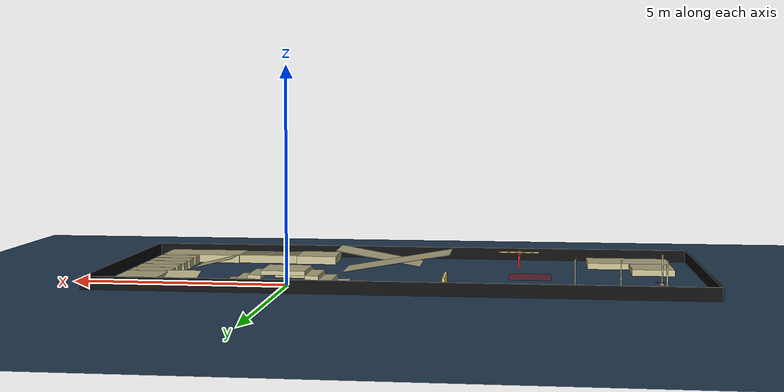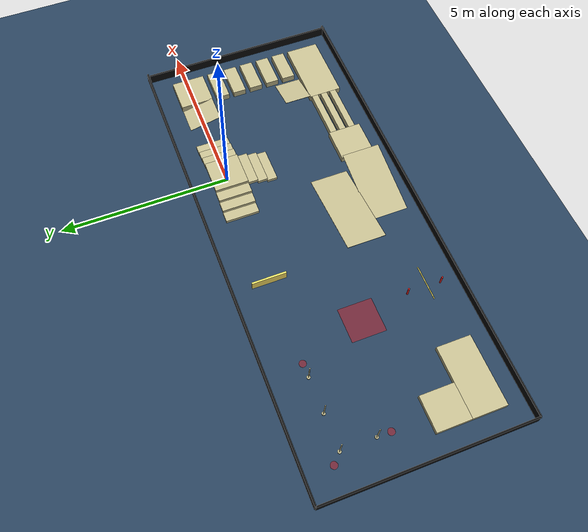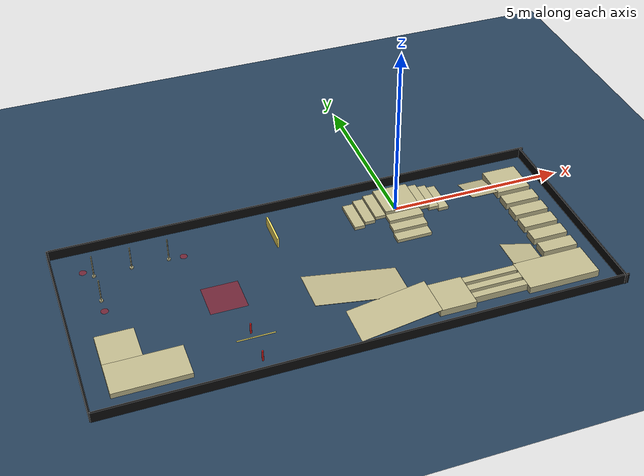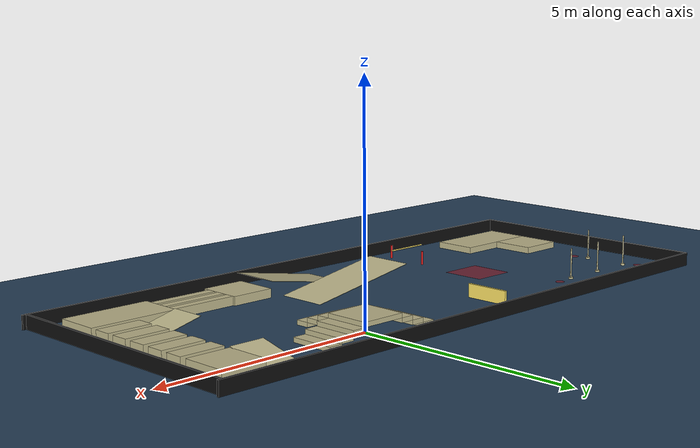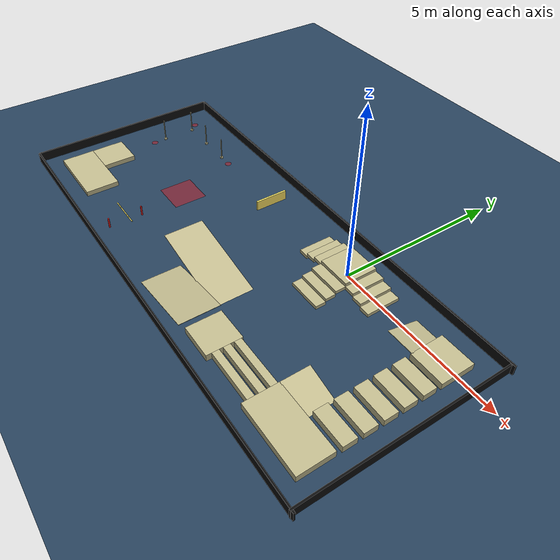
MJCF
<mujoco model="nav_tools terrain B_C">
  <statistic center="-5.5 -1.9 0.4" extent="5.0" />
  <visual>
    <headlight diffuse="0.6 0.6 0.6" ambient="0.3 0.3 0.3" specular="0 0 0" />
    <rgba haze="0.15 0.25 0.35 1" />
    <global azimuth="90" elevation="-20" />
  </visual>
  <asset>
    <texture type="skybox" builtin="gradient" rgb1="0.3 0.5 0.7" rgb2="0 0 0" width="512" height="3072" />
    <texture type="2d" name="groundplane" builtin="checker" mark="edge" rgb1="0.2 0.3 0.4" rgb2="0.1 0.2 0.3" markrgb="0.8 0.8 0.8" width="300" height="300" />
    <material name="groundplane" texture="groundplane" texuniform="true" texrepeat="5 5" reflectance="0.2" />
  </asset>
  <worldbody>
    <!-- 比赛地图基准地面。 -->
    <geom name="floor" size="0 0 0.05" type="plane" material="groundplane" />
    <!-- 14m x 6m outer boundary, mirrored from A_C across the x axis. -->
    <geom name="border_x_min" pos="-9.5 -1.9 0.15" type="box" size="0.025 3.0 0.15" rgba="0.05 0.05 0.05 1" />
    <geom name="border_x_max" pos="4.401477 -1.937395 0.15" type="box" size="0.025 3.0 0.15" rgba="0.05 0.05 0.05 1" />
    <geom name="border_y_min" pos="-2.5 -4.9 0.15" type="box" size="7.0 0.025 0.15" rgba="0.05 0.05 0.05 1" />
    <geom name="border_y_max" pos="-2.5 1.1 0.15" type="box" size="7.0 0.025 0.15" rgba="0.05 0.05 0.05 1" />
    <!-- 高墙：机器人需从上方跃过或攀爬通过，自动/遥控均可计分。 -->
    <geom pos="-3.589248 0.022509 0.15" type="box" size="0.025 0.5 0.15" quat="1 0 0 0" rgba="1.0 0.9 0.4 1.0" />
    <!-- 砂砾碎木坑：L 形障碍，需从 1m 短边进入或离开，完整通过才计分。 -->
    <geom pos="-8.430146 -2.855226 0.075" type="box" size="0.5 0.5 0.075" quat="0.707107 0 0 0.707107" rgba="0.75 0.72 0.55 1.0" />
    <geom pos="-7.930146 -3.855226 0.075" type="box" size="0.5 1.0 0.075" quat="0.707107 0 0 0.707107" rgba="0.75 0.72 0.55 1.0" />
    <!-- 限高杆：机器人需从横杆下方通过，碰落横杆则越障失败。 -->
    <geom pos="-5.231818 -4.372727 0.155" type="cylinder" size="0.025 0.155" quat="0.707107 0 0 -0.707107" rgba="0.8 0.1 0.1 1.0" />
    <geom pos="-5.231818 -3.372727 0.155" type="cylinder" size="0.025 0.155" quat="0.707107 0 0 -0.707107" rgba="0.8 0.1 0.1 1.0" />
    <geom pos="-5.231818 -3.872727 0.325" type="cylinder" size="0.015 0.5" quat="0.5 0.5 -0.5 -0.5" rgba="1.0 0.9 0.4 1.0" />
    <!-- 启动区：规则允许地面和 T 字形台阶上各一个启动区，机器人需完全纳入启动区后开始。 -->
    <geom pos="-5.5 -1.9 0" type="box" size="0.5 0.5 0.001" rgba="1.0 0.0 0.0 0.35" contype="0" conaffinity="0" />
    <!-- T 字形台阶：可选启动区之一在最高平台；通过时每一级台阶顶面需至少接触一次。 -->
    <geom pos="-1.25 0 0.05" type="box" size="0.15 0.5 0.05" quat="1 0 0 0" rgba="0.75 0.72 0.55 1.0" />
    <geom pos="-0.95 0 0.15" type="box" size="0.15 0.5 0.05" quat="1 0 0 0" rgba="0.75 0.72 0.55 1.0" />
    <geom pos="-0.65 0 0.25" type="box" size="0.15 0.5 0.05" quat="1 0 0 0" rgba="0.75 0.72 0.55 1.0" />
    <geom pos="0 0 0.35" type="box" size="0.5 0.5 0.05" quat="1 0 0 0" rgba="0.75 0.72 0.55 1.0" />
    <geom pos="0.65 0 0.25" type="box" size="0.15 0.5 0.05" quat="1 0 0 0" rgba="0.75 0.72 0.55 1.0" />
    <geom pos="0.95 0 0.15" type="box" size="0.15 0.5 0.05" quat="1 0 0 0" rgba="0.75 0.72 0.55 1.0" />
    <geom pos="1.25 0 0.05" type="box" size="0.15 0.5 0.05" quat="1 0 0 0" rgba="0.75 0.72 0.55 1.0" />
    <geom pos="0 -0.65 0.25" type="box" size="0.15 0.5 0.05" quat="0.707107 0 0 -0.707107" rgba="0.75 0.72 0.55 1.0" />
    <geom pos="0 -0.95 0.15" type="box" size="0.15 0.5 0.05" quat="0.707107 0 0 -0.707107" rgba="0.75 0.72 0.55 1.0" />
    <geom pos="0 -1.25 0.05" type="box" size="0.15 0.5 0.05" quat="0.707107 0 0 -0.707107" rgba="0.75 0.72 0.55 1.0" />
    <!-- 大斜坡、木桥 A / 木桥 B：大斜坡需满足长边行走距离要求；木桥需从一侧平台经木桥到达另一侧平台。 -->
    <geom pos="2.521477 -0.037395 0.1" type="box" size="0.40 0.5 0.005" quat="0.992546 -0.12187 0 0" rgba="0.75 0.72 0.55 1.0" />
    <geom pos="3.401477 -0.037395 0.1" type="box" size="0.5 0.5 0.10" quat="0.707107 0 0 -0.707107" rgba="0.75 0.72 0.55 1.0" />
    <geom pos="3.401477 -0.887395 0.1" type="box" size="0.2 0.5 0.10" quat="0.707107 0 0 -0.707107" rgba="0.75 0.72 0.55 1.0" />
    <geom pos="3.401477 -1.437395 0.1" type="box" size="0.2 0.5 0.10" quat="0.707107 0 0 -0.707107" rgba="0.75 0.72 0.55 1.0" />
    <geom pos="3.401477 -1.987395 0.1" type="box" size="0.2 0.5 0.10" quat="0.707107 0 0 -0.707107" rgba="0.75 0.72 0.55 1.0" />
    <geom pos="3.401477 -2.537395 0.1" type="box" size="0.2 0.5 0.10" quat="0.707107 0 0 -0.707107" rgba="0.75 0.72 0.55 1.0" />
    <geom pos="3.401477 -3.087395 0.1" type="box" size="0.2 0.5 0.10" quat="0.707107 0 0 -0.707107" rgba="0.75 0.72 0.55 1.0" />
    <geom pos="2.901477 -3.937395 0.1" type="box" size="0.5 1.0 0.10" quat="0.707107 0 0 -0.707107" rgba="0.75 0.72 0.55 1.0" />
    <geom pos="2.401477 -3.037595 0.0951" type="box" size="0.4133 0.5 0.005" quat="0.701836 -0.086174 0.086174 -0.701836" rgba="0.75 0.72 0.55 1.0" />
    <geom pos="1.151477 -3.587395 0.1" type="box" size="0.1 0.75 0.10" quat="0.707107 0 0 -0.707107" rgba="0.75 0.72 0.55 1.0" />
    <geom pos="1.151477 -3.887395 0.1" type="box" size="0.1 0.75 0.10" quat="0.707107 0 0 -0.707107" rgba="0.75 0.72 0.55 1.0" />
    <geom pos="1.151477 -4.187395 0.1" type="box" size="0.1 0.75 0.10" quat="0.707107 0 0 -0.707107" rgba="0.75 0.72 0.55 1.0" />
    <geom pos="-0.098523 -3.937395 0.1" type="box" size="0.5 0.5 0.10" quat="0.707107 0 0 -0.707107" rgba="0.75 0.72 0.55 1.0" />
    <geom pos="-1.598523 -2.871195 0.0951" type="box" size="0.5759 2.0 0.005" quat="0.704416 -0.061629 0.061629 -0.704416" rgba="0.75 0.72 0.55 1.0" />
    <geom pos="-2.098523 -4.005495 0.0951" type="box" size="0.5759 1.5 0.005" quat="0.704416 0.061629 -0.061629 -0.704416" rgba="0.75 0.72 0.55 1.0" />
    <!-- 直角绕杆：需按 S 形绕过竖杆，并经过两端及拐角必达区。 -->
    <geom pos="-6.075243 0.034483 0" type="cylinder" size="0.1 0.001" rgba="1.0 0.0 0.0 0.35" contype="0" conaffinity="0" />
    <geom pos="-8.475243 -1.365517 0" type="cylinder" size="0.1 0.001" rgba="1.0 0.0 0.0 0.35" contype="0" conaffinity="0" />
    <geom pos="-8.725243 0.284483 0" type="cylinder" size="0.1 0.001" rgba="1.0 0.0 0.0 0.35" contype="0" conaffinity="0" />
    <geom pos="-6.475243 0.034483 0.02" type="cylinder" size="0.05 0.02" quat="0.707107 0 0 -0.707107" rgba="0.75 0.72 0.55 1.0" />
    <geom pos="-6.475243 0.034483 0.37" type="cylinder" size="0.015 0.33" quat="0.707107 0 0 -0.707107" rgba="0.75 0.72 0.55 1.0" />
    <geom pos="-7.475243 0.034483 0.02" type="cylinder" size="0.05 0.02" quat="0.707107 0 0 -0.707107" rgba="0.75 0.72 0.55 1.0" />
    <geom pos="-7.475243 0.034483 0.37" type="cylinder" size="0.015 0.33" quat="0.707107 0 0 -0.707107" rgba="0.75 0.72 0.55 1.0" />
    <geom pos="-8.475243 0.034483 0.02" type="cylinder" size="0.05 0.02" quat="0.707107 0 0 -0.707107" rgba="0.75 0.72 0.55 1.0" />
    <geom pos="-8.475243 0.034483 0.37" type="cylinder" size="0.015 0.33" quat="0.707107 0 0 -0.707107" rgba="0.75 0.72 0.55 1.0" />
    <geom pos="-8.475243 -0.965517 0.02" type="cylinder" size="0.05 0.02" quat="0.707107 0 0 -0.707107" rgba="0.75 0.72 0.55 1.0" />
    <geom pos="-8.475243 -0.965517 0.37" type="cylinder" size="0.015 0.33" quat="0.707107 0 0 -0.707107" rgba="0.75 0.72 0.55 1.0" />
  </worldbody>
</mujoco>
